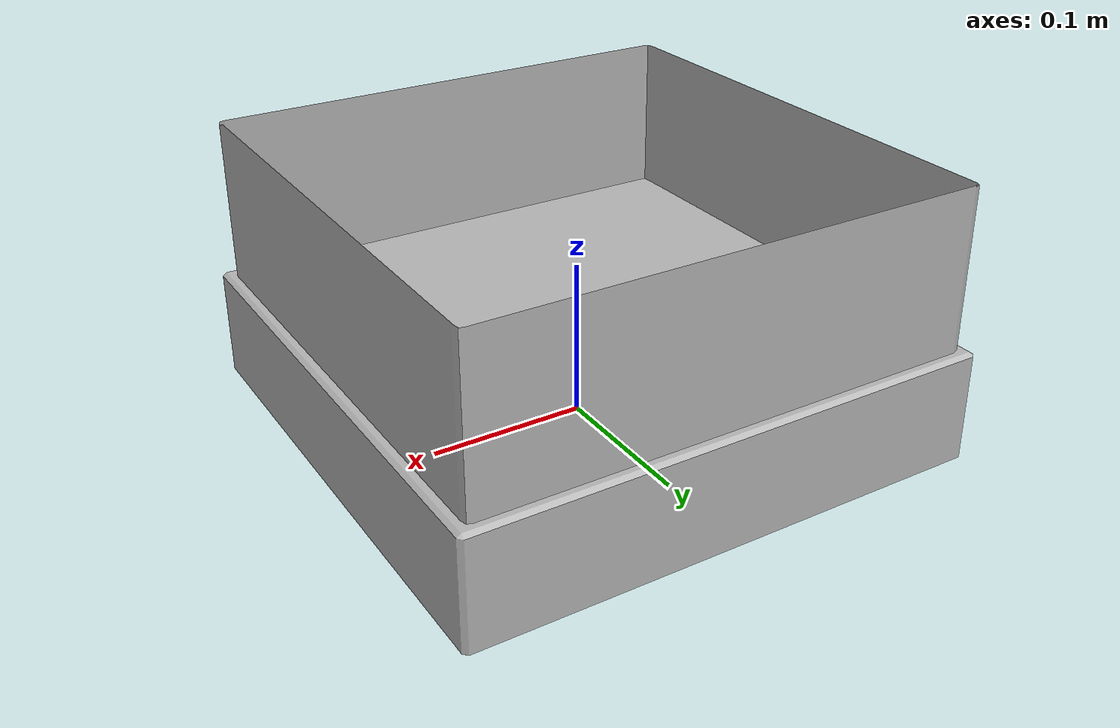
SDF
<?xml version='1.0'?>
<sdf version='1.6'>
  <model name='sorting_bin_green_'>
    <link name='sorting_bin_green_base_link'>
      <pose frame=''>0 0 0 0 -0 0</pose>
      <inertial>
        <pose frame=''>0 0 0.009901 0 -0 0</pose>
        <mass>101</mass>
        <inertia>
          <ixx>2.9901</ixx>
          <ixy>0</ixy>
          <ixz>0</ixz>
          <iyy>2.9901</iyy>
          <iyz>0</iyz>
          <izz>2</izz>
        </inertia>
      </inertial>
      <gravity>1</gravity>
      <velocity_decay/>
      <sensor name='sorting_bin_green_contact_sensor' type='contact'>
        <update_rate>10</update_rate>
        <contact>
          <collision>sorting_bin_green_base_link_collision</collision>
          <topic>__default_topic__</topic>
        </contact>
        <pose frame=''>0 0 1 0 -0 0</pose>
      </sensor>
      <self_collide>0</self_collide>
      <enable_wind>0</enable_wind>
      <kinematic>0</kinematic>
      <visual name='sorting_bin_green_base_link_visual'>
        <pose frame=''>0 0 0 0 -0 0</pose>
        <geometry>
          <mesh>
            <scale>0.5 0.5 0.35</scale>
            <uri>model://sorting_bin_green_/meshes/visual/bin.dae</uri>
          </mesh>
        </geometry>
        <material>
          <shader type='pixel'/>
        </material>
        <transparency>0</transparency>
        <cast_shadows>1</cast_shadows>
      </visual>
      <collision name='sorting_bin_green_base_link_collision'>
        <laser_retro>0</laser_retro>
        <max_contacts>10</max_contacts>
        <pose frame=''>0 0 0 0 -0 0</pose>
        <geometry>
          <mesh>
            <uri>model://sorting_bin_green_/meshes/collision/bin_bottom.dae</uri>
            <scale>0.5 0.5 0.35</scale>
          </mesh>
        </geometry>
        <surface>
          <friction>
            <ode>
              <mu>1</mu>
              <mu2>1</mu2>
              <fdir1>0 0 0</fdir1>
              <slip1>0</slip1>
              <slip2>0</slip2>
            </ode>
            <torsional>
              <coefficient>1</coefficient>
              <patch_radius>0</patch_radius>
              <surface_radius>0</surface_radius>
              <use_patch_radius>1</use_patch_radius>
              <ode>
                <slip>0</slip>
              </ode>
            </torsional>
          </friction>
          <bounce>
            <restitution_coefficient>0</restitution_coefficient>
            <threshold>1e+06</threshold>
          </bounce>
          <contact>
            <collide_without_contact>0</collide_without_contact>
            <collide_without_contact_bitmask>1</collide_without_contact_bitmask>
            <collide_bitmask>1</collide_bitmask>
            <ode>
              <soft_cfm>0</soft_cfm>
              <soft_erp>0.2</soft_erp>
              <kp>1e+13</kp>
              <kd>1</kd>
              <max_vel>0.01</max_vel>
              <min_depth>0</min_depth>
            </ode>
            <bullet>
              <split_impulse>1</split_impulse>
              <split_impulse_penetration_threshold>-0.01</split_impulse_penetration_threshold>
              <soft_cfm>0</soft_cfm>
              <soft_erp>0.2</soft_erp>
              <kp>1e+13</kp>
              <kd>1</kd>
            </bullet>
          </contact>
        </surface>
      </collision>
      <collision name='sorting_bin_green_base_link_collision_1'>
        <laser_retro>0</laser_retro>
        <max_contacts>10</max_contacts>
        <pose frame=''>0 0 0 0 -0 0</pose>
        <geometry>
          <mesh>
            <uri>model://sorting_bin_green_/meshes/collision/bin_sides.dae</uri>
            <scale>0.5 0.5 0.35</scale>
          </mesh>
        </geometry>
        <surface>
          <friction>
            <ode>
              <mu>1</mu>
              <mu2>1</mu2>
              <fdir1>0 0 0</fdir1>
              <slip1>0</slip1>
              <slip2>0</slip2>
            </ode>
            <torsional>
              <coefficient>1</coefficient>
              <patch_radius>0</patch_radius>
              <surface_radius>0</surface_radius>
              <use_patch_radius>1</use_patch_radius>
              <ode>
                <slip>0</slip>
              </ode>
            </torsional>
          </friction>
          <bounce>
            <restitution_coefficient>0</restitution_coefficient>
            <threshold>1e+06</threshold>
          </bounce>
          <contact>
            <collide_without_contact>0</collide_without_contact>
            <collide_without_contact_bitmask>1</collide_without_contact_bitmask>
            <collide_bitmask>1</collide_bitmask>
            <ode>
              <soft_cfm>0</soft_cfm>
              <soft_erp>0.2</soft_erp>
              <kp>1e+13</kp>
              <kd>1</kd>
              <max_vel>0.01</max_vel>
              <min_depth>0</min_depth>
            </ode>
            <bullet>
              <split_impulse>1</split_impulse>
              <split_impulse_penetration_threshold>-0.01</split_impulse_penetration_threshold>
              <soft_cfm>0</soft_cfm>
              <soft_erp>0.2</soft_erp>
              <kp>1e+13</kp>
              <kd>1</kd>
            </bullet>
          </contact>
        </surface>
      </collision>
    </link>
    <static>1</static>
    <allow_auto_disable>1</allow_auto_disable>
  </model>
</sdf>
